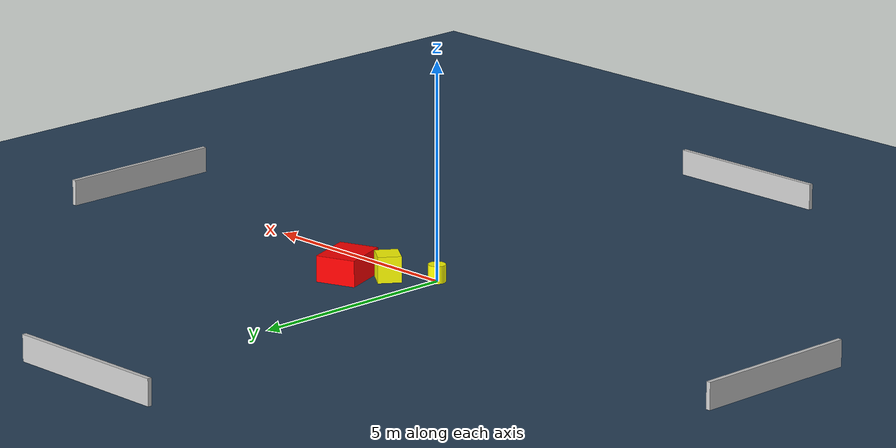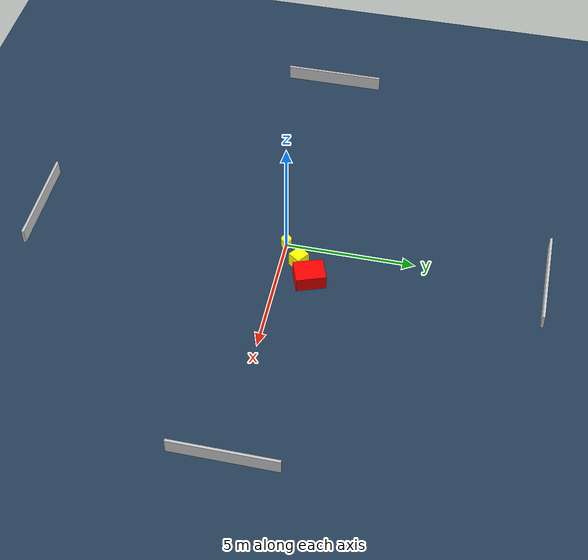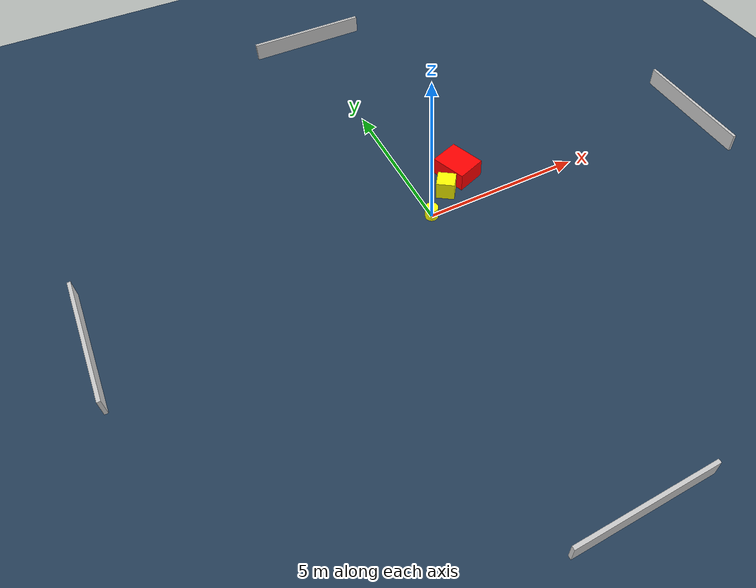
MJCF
<?xml version="1.0" ?>
<mujoco model="generated_environment">
  <option timestep="0.01" integrator="RK4" cone="elliptic"/>
  <default>
    <geom density="1"/>
  </default>
  <asset>
    <texture builtin="gradient" height="3072" name="skybox" rgb1="0.3 0.5 0.7" rgb2="0 0 0" type="skybox" width="512"/>
    <texture builtin="checker" height="300" name="groundplane" rgb1="0.2 0.3 0.4" rgb2="0.1 0.2 0.3" type="2d" width="300"/>
    <material name="groundplane" reflectance="0.2" texrepeat="5 5" texture="groundplane"/>
  </asset>
  <worldbody>
    <light dir="0 0 -1" directional="true" pos="0 0 1.5"/>
    <geom condim="3" friction="0.5 0.005 0.001" material="groundplane" name="floor" pos="0 0 0" size="0 0 0.05" type="plane"/>
    <body name="walls">
      <geom name="wall_1" condim="4" pos="-10.0 0.0 0.3" rgba="0.800000011920929 0.800000011920929 0.800000011920929 1.0" size="0.05 2.0 0.3" type="box"/>
      <geom name="wall_2" condim="4" pos="10.0 0.0 0.3" rgba="0.800000011920929 0.800000011920929 0.800000011920929 1.0" size="0.05 2.0 0.3" type="box"/>
      <geom name="wall_3" condim="4" pos="0.0 -10.0 0.3" rgba="0.800000011920929 0.800000011920929 0.800000011920929 1.0" size="2.0 0.05 0.3" type="box"/>
      <geom name="wall_4" condim="4" pos="0.0 10.0 0.3" rgba="0.800000011920929 0.800000011920929 0.800000011920929 1.0" size="2.0 0.05 0.3" type="box"/>
    </body>
    <body name="robot">
      <joint name="joint_x" type="slide" pos="0 0 0" axis="1 0 0"/>
      <joint name="joint_y" type="slide" pos="0 0 0" axis="0 1 0"/>
      <geom name="robot" type="cylinder" pos="0.0 0.0 0.2" size="0.2 0.2 0.0" mass="5.0" friction="1.0 0.005 0.0001" condim="4" rgba="1.0 1.0 0.0 1.0"/>
    </body>
    <body name="obstacle_1_movable">
      <geom name="obstacle_1_movable" condim="4" pos="0.8595188779035922 0.6680783055179425 0.3" euler="0 0 144.91037879799083" friction="0.0 0.005 0.001" rgba="1.0 1.0 0.0 1.0" size="0.2827084843509617 0.2651906862037952 0.3" type="box" mass="0.1"/>
      <joint type="free"/>
    </body>
    <body name="obstacle_2_static">
      <geom name="obstacle_2_static" condim="4" pos="1.5720094320516609 1.225887312504695 0.3" euler="0 0 289.9051735254529" friction="0.0 0.005 0.001" rgba="1.0 0.0 0.0 1.0" size="0.5758265185238408 0.4651637432273736 0.3" type="box"/>
    </body>
  </worldbody>
  <actuator>
    <motor name="actuator_x" joint="joint_x" gear="1" ctrlrange="-1 1"/>
    <motor name="actuator_y" joint="joint_y" gear="1" ctrlrange="-1 1"/>
  </actuator>
</mujoco>
